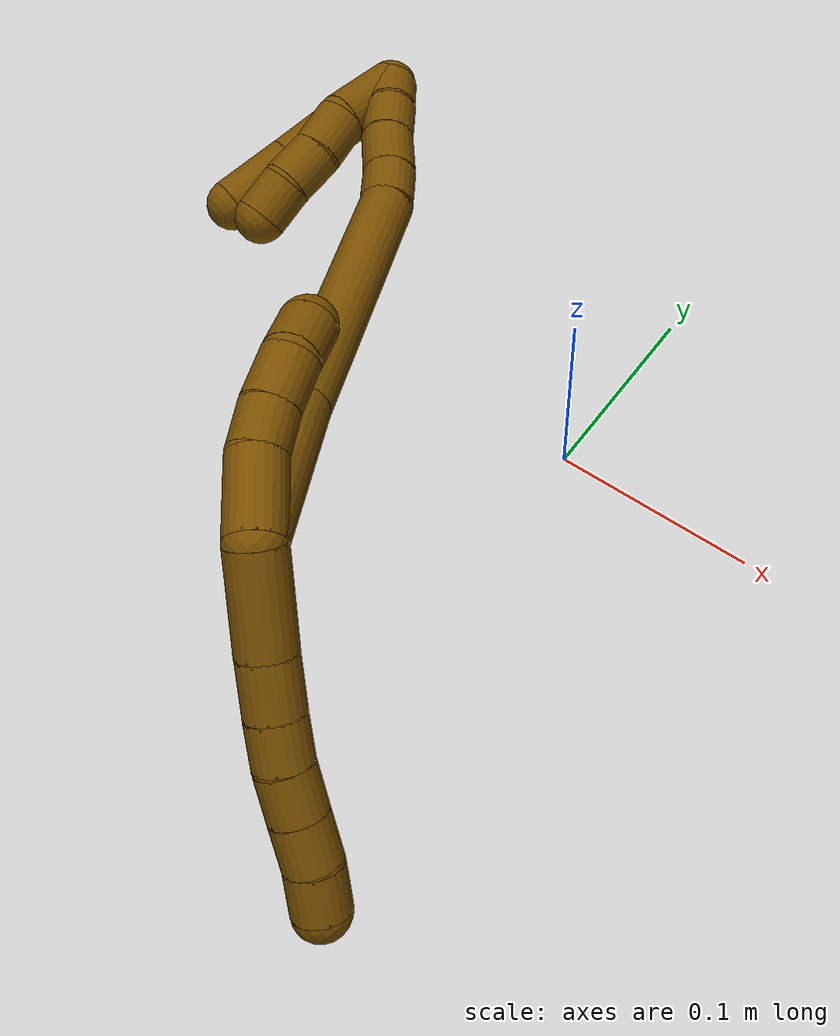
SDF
<sdf version="1.7">
 <world name="default">
  <model name="12">
   <static>0</static>
   <link name="12">
    <collision name="collision-cylinder-e_1_2_8">
     <pose>-0.000593 0.017955 -0.011881 -2.15534 -0.027544 0.051245</pose>
     <geometry><cylinder><radius>0.0125</radius><length>0.043076</length></cylinder></geometry>
     <surface>
      <friction><ode><mu>1.16</mu><mu2>1.16</mu2><slip1>0</slip1><slip2>0</slip2></ode></friction>
      <contact><ode><kp>1e+06</kp><kd>1</kd><max_vel>0</max_vel><min_depth>0.001</min_depth></ode></contact>
     </surface>
    </collision>
    <visual name="visual-cylinder-e_1_2_8">
     <pose>-0.000593 0.017955 -0.011881 -2.15534 -0.027544 0.051245</pose>
     <geometry><cylinder><radius>0.0125</radius><length>0.043076</length></cylinder></geometry>
     <material><ambient>0.466667 0.301961 0 1</ambient></material>
    </visual>
    <collision name="collision-cylinder-e_2_8_9">
     <pose>-0.001012 0.04598 -0.030113 -2.13353 0.014645 -0.026551</pose>
     <geometry><cylinder><radius>0.0125</radius><length>0.023812</length></cylinder></geometry>
     <surface>
      <friction><ode><mu>1.16</mu><mu2>1.16</mu2><slip1>0</slip1><slip2>0</slip2></ode></friction>
      <contact><ode><kp>1e+06</kp><kd>1</kd><max_vel>0</max_vel><min_depth>0.001</min_depth></ode></contact>
     </surface>
    </collision>
    <visual name="visual-cylinder-e_2_8_9">
     <pose>-0.001012 0.04598 -0.030113 -2.13353 0.014645 -0.026551</pose>
     <geometry><cylinder><radius>0.0125</radius><length>0.023812</length></cylinder></geometry>
     <material><ambient>0.466667 0.301961 0 1</ambient></material>
    </visual>
    <collision name="collision-cylinder-e_3_9_10">
     <pose>-0.000525 0.06468 -0.041557 -2.10391 0.031171 -0.054578</pose>
     <geometry><cylinder><radius>0.0125</radius><length>0.020055</length></cylinder></geometry>
     <surface>
      <friction><ode><mu>1.16</mu><mu2>1.16</mu2><slip1>0</slip1><slip2>0</slip2></ode></friction>
      <contact><ode><kp>1e+06</kp><kd>1</kd><max_vel>0</max_vel><min_depth>0.001</min_depth></ode></contact>
     </surface>
    </collision>
    <visual name="visual-cylinder-e_3_9_10">
     <pose>-0.000525 0.06468 -0.041557 -2.10391 0.031171 -0.054578</pose>
     <geometry><cylinder><radius>0.0125</radius><length>0.020055</length></cylinder></geometry>
     <material><ambient>0.466667 0.301961 0 1</ambient></material>
    </visual>
    <collision name="collision-cylinder-e_4_10_11">
     <pose>-5.4e-05 0.08285 -0.050929 -1.99244 0.015179 -0.023444</pose>
     <geometry><cylinder><radius>0.0125</radius><length>0.020909</length></cylinder></geometry>
     <surface>
      <friction><ode><mu>1.16</mu><mu2>1.16</mu2><slip1>0</slip1><slip2>0</slip2></ode></friction>
      <contact><ode><kp>1e+06</kp><kd>1</kd><max_vel>0</max_vel><min_depth>0.001</min_depth></ode></contact>
     </surface>
    </collision>
    <visual name="visual-cylinder-e_4_10_11">
     <pose>-5.4e-05 0.08285 -0.050929 -1.99244 0.015179 -0.023444</pose>
     <geometry><cylinder><radius>0.0125</radius><length>0.020909</length></cylinder></geometry>
     <material><ambient>0.466667 0.301961 0 1</ambient></material>
    </visual>
    <collision name="collision-cylinder-e_5_11_12">
     <pose>0.000192 0.102109 -0.059468 -1.98386 0.008207 -0.012558</pose>
     <geometry><cylinder><radius>0.0125</radius><length>0.021229</length></cylinder></geometry>
     <surface>
      <friction><ode><mu>1.16</mu><mu2>1.16</mu2><slip1>0</slip1><slip2>0</slip2></ode></friction>
      <contact><ode><kp>1e+06</kp><kd>1</kd><max_vel>0</max_vel><min_depth>0.001</min_depth></ode></contact>
     </surface>
    </collision>
    <visual name="visual-cylinder-e_5_11_12">
     <pose>0.000192 0.102109 -0.059468 -1.98386 0.008207 -0.012558</pose>
     <geometry><cylinder><radius>0.0125</radius><length>0.021229</length></cylinder></geometry>
     <material><ambient>0.466667 0.301961 0 1</ambient></material>
    </visual>
    <collision name="collision-cylinder-e_6_12_6">
     <pose>-0.00056 0.120937 -0.068804 -2.07919 -0.080344 0.136608</pose>
     <geometry><cylinder><radius>0.0125</radius><length>0.020919</length></cylinder></geometry>
     <surface>
      <friction><ode><mu>1.16</mu><mu2>1.16</mu2><slip1>0</slip1><slip2>0</slip2></ode></friction>
      <contact><ode><kp>1e+06</kp><kd>1</kd><max_vel>0</max_vel><min_depth>0.001</min_depth></ode></contact>
     </surface>
    </collision>
    <visual name="visual-cylinder-e_6_12_6">
     <pose>-0.00056 0.120937 -0.068804 -2.07919 -0.080344 0.136608</pose>
     <geometry><cylinder><radius>0.0125</radius><length>0.020919</length></cylinder></geometry>
     <material><ambient>0.466667 0.301961 0 1</ambient></material>
    </visual>
    <collision name="collision-cylinder-e_1_2_13">
     <pose>-0.010069 -0.009478 0.011098 0.706814 -0.603908 -0.228802</pose>
     <geometry><cylinder><radius>0.0125</radius><length>0.035461</length></cylinder></geometry>
     <surface>
      <friction><ode><mu>1.16</mu><mu2>1.16</mu2><slip1>0</slip1><slip2>0</slip2></ode></friction>
      <contact><ode><kp>1e+06</kp><kd>1</kd><max_vel>0</max_vel><min_depth>0.001</min_depth></ode></contact>
     </surface>
    </collision>
    <visual name="visual-cylinder-e_1_2_13">
     <pose>-0.010069 -0.009478 0.011098 0.706814 -0.603908 -0.228802</pose>
     <geometry><cylinder><radius>0.0125</radius><length>0.035461</length></cylinder></geometry>
     <material><ambient>0.466667 0.301961 0 1</ambient></material>
    </visual>
    <collision name="collision-cylinder-e_2_13_14">
     <pose>-0.025188 -0.022914 0.030042 0.467211 -0.521636 -0.126846</pose>
     <geometry><cylinder><radius>0.0125</radius><length>0.020271</length></cylinder></geometry>
     <surface>
      <friction><ode><mu>1.16</mu><mu2>1.16</mu2><slip1>0</slip1><slip2>0</slip2></ode></friction>
      <contact><ode><kp>1e+06</kp><kd>1</kd><max_vel>0</max_vel><min_depth>0.001</min_depth></ode></contact>
     </surface>
    </collision>
    <visual name="visual-cylinder-e_2_13_14">
     <pose>-0.025188 -0.022914 0.030042 0.467211 -0.521636 -0.126846</pose>
     <geometry><cylinder><radius>0.0125</radius><length>0.020271</length></cylinder></geometry>
     <material><ambient>0.466667 0.301961 0 1</ambient></material>
    </visual>
    <collision name="collision-cylinder-e_3_14_15">
     <pose>-0.035468 -0.03033 0.047703 0.338772 -0.465688 -0.081071</pose>
     <geometry><cylinder><radius>0.0125</radius><length>0.023294</length></cylinder></geometry>
     <surface>
      <friction><ode><mu>1.16</mu><mu2>1.16</mu2><slip1>0</slip1><slip2>0</slip2></ode></friction>
      <contact><ode><kp>1e+06</kp><kd>1</kd><max_vel>0</max_vel><min_depth>0.001</min_depth></ode></contact>
     </surface>
    </collision>
    <visual name="visual-cylinder-e_3_14_15">
     <pose>-0.035468 -0.03033 0.047703 0.338772 -0.465688 -0.081071</pose>
     <geometry><cylinder><radius>0.0125</radius><length>0.023294</length></cylinder></geometry>
     <material><ambient>0.466667 0.301961 0 1</ambient></material>
    </visual>
    <collision name="collision-cylinder-e_4_15_5">
     <pose>-0.047875 -0.03485 0.06509 0.139229 -0.7538 -0.055185</pose>
     <geometry><cylinder><radius>0.0125</radius><length>0.020974</length></cylinder></geometry>
     <surface>
      <friction><ode><mu>1.16</mu><mu2>1.16</mu2><slip1>0</slip1><slip2>0</slip2></ode></friction>
      <contact><ode><kp>1e+06</kp><kd>1</kd><max_vel>0</max_vel><min_depth>0.001</min_depth></ode></contact>
     </surface>
    </collision>
    <visual name="visual-cylinder-e_4_15_5">
     <pose>-0.047875 -0.03485 0.06509 0.139229 -0.7538 -0.055185</pose>
     <geometry><cylinder><radius>0.0125</radius><length>0.020974</length></cylinder></geometry>
     <material><ambient>0.466667 0.301961 0 1</ambient></material>
    </visual>
    <collision name="collision-cylinder-e_1_2_16">
     <pose>-0.034683 -0.004339 0.02567 0.167436 -0.926883 -0.083822</pose>
     <geometry><cylinder><radius>0.0125</radius><length>0.086734</length></cylinder></geometry>
     <surface>
      <friction><ode><mu>1.16</mu><mu2>1.16</mu2><slip1>0</slip1><slip2>0</slip2></ode></friction>
      <contact><ode><kp>1e+06</kp><kd>1</kd><max_vel>0</max_vel><min_depth>0.001</min_depth></ode></contact>
     </surface>
    </collision>
    <visual name="visual-cylinder-e_1_2_16">
     <pose>-0.034683 -0.004339 0.02567 0.167436 -0.926883 -0.083822</pose>
     <geometry><cylinder><radius>0.0125</radius><length>0.086734</length></cylinder></geometry>
     <material><ambient>0.466667 0.301961 0 1</ambient></material>
    </visual>
    <collision name="collision-cylinder-e_2_16_17">
     <pose>-0.108702 -0.02136 0.10032 0.253376 -0.66085 -0.08732</pose>
     <geometry><cylinder><radius>0.0125</radius><length>0.128175</length></cylinder></geometry>
     <surface>
      <friction><ode><mu>1.16</mu><mu2>1.16</mu2><slip1>0</slip1><slip2>0</slip2></ode></friction>
      <contact><ode><kp>1e+06</kp><kd>1</kd><max_vel>0</max_vel><min_depth>0.001</min_depth></ode></contact>
     </surface>
    </collision>
    <visual name="visual-cylinder-e_2_16_17">
     <pose>-0.108702 -0.02136 0.10032 0.253376 -0.66085 -0.08732</pose>
     <geometry><cylinder><radius>0.0125</radius><length>0.128175</length></cylinder></geometry>
     <material><ambient>0.466667 0.301961 0 1</ambient></material>
    </visual>
    <collision name="collision-cylinder-e_3_17_18">
     <pose>-0.154947 -0.037884 0.156115 0.513211 -0.72352 -0.197935</pose>
     <geometry><cylinder><radius>0.0125</radius><length>0.020874</length></cylinder></geometry>
     <surface>
      <friction><ode><mu>1.16</mu><mu2>1.16</mu2><slip1>0</slip1><slip2>0</slip2></ode></friction>
      <contact><ode><kp>1e+06</kp><kd>1</kd><max_vel>0</max_vel><min_depth>0.001</min_depth></ode></contact>
     </surface>
    </collision>
    <visual name="visual-cylinder-e_3_17_18">
     <pose>-0.154947 -0.037884 0.156115 0.513211 -0.72352 -0.197935</pose>
     <geometry><cylinder><radius>0.0125</radius><length>0.020874</length></cylinder></geometry>
     <material><ambient>0.466667 0.301961 0 1</ambient></material>
    </visual>
    <collision name="collision-cylinder-e_4_18_19">
     <pose>-0.169529 -0.047306 0.169742 0.686335 -0.716647 -0.266034</pose>
     <geometry><cylinder><radius>0.0125</radius><length>0.023361</length></cylinder></geometry>
     <surface>
      <friction><ode><mu>1.16</mu><mu2>1.16</mu2><slip1>0</slip1><slip2>0</slip2></ode></friction>
      <contact><ode><kp>1e+06</kp><kd>1</kd><max_vel>0</max_vel><min_depth>0.001</min_depth></ode></contact>
     </surface>
    </collision>
    <visual name="visual-cylinder-e_4_18_19">
     <pose>-0.169529 -0.047306 0.169742 0.686335 -0.716647 -0.266034</pose>
     <geometry><cylinder><radius>0.0125</radius><length>0.023361</length></cylinder></geometry>
     <material><ambient>0.466667 0.301961 0 1</ambient></material>
    </visual>
    <collision name="collision-cylinder-e_5_19_20">
     <pose>-0.183709 -0.05682 0.183258 0.53067 -0.697067 -0.196846</pose>
     <geometry><cylinder><radius>0.0125</radius><length>0.020271</length></cylinder></geometry>
     <surface>
      <friction><ode><mu>1.16</mu><mu2>1.16</mu2><slip1>0</slip1><slip2>0</slip2></ode></friction>
      <contact><ode><kp>1e+06</kp><kd>1</kd><max_vel>0</max_vel><min_depth>0.001</min_depth></ode></contact>
     </surface>
    </collision>
    <visual name="visual-cylinder-e_5_19_20">
     <pose>-0.183709 -0.05682 0.183258 0.53067 -0.697067 -0.196846</pose>
     <geometry><cylinder><radius>0.0125</radius><length>0.020271</length></cylinder></geometry>
     <material><ambient>0.466667 0.301961 0 1</ambient></material>
    </visual>
    <collision name="collision-cylinder-e_6_20_1">
     <pose>-0.197944 -0.063982 0.195942 0.495056 -0.849413 -0.227579</pose>
     <geometry><cylinder><radius>0.0125</radius><length>0.020585</length></cylinder></geometry>
     <surface>
      <friction><ode><mu>1.16</mu><mu2>1.16</mu2><slip1>0</slip1><slip2>0</slip2></ode></friction>
      <contact><ode><kp>1e+06</kp><kd>1</kd><max_vel>0</max_vel><min_depth>0.001</min_depth></ode></contact>
     </surface>
    </collision>
    <visual name="visual-cylinder-e_6_20_1">
     <pose>-0.197944 -0.063982 0.195942 0.495056 -0.849413 -0.227579</pose>
     <geometry><cylinder><radius>0.0125</radius><length>0.020585</length></cylinder></geometry>
     <material><ambient>0.466667 0.301961 0 1</ambient></material>
    </visual>
    <collision name="collision-cylinder-e_1_1_21">
     <pose>-0.205497 -0.067949 0.185371 3.09707 0.010618 0.468148</pose>
     <geometry><cylinder><radius>0.0125</radius><length>0.033139</length></cylinder></geometry>
     <surface>
      <friction><ode><mu>1.16</mu><mu2>1.16</mu2><slip1>0</slip1><slip2>0</slip2></ode></friction>
      <contact><ode><kp>1e+06</kp><kd>1</kd><max_vel>0</max_vel><min_depth>0.001</min_depth></ode></contact>
     </surface>
    </collision>
    <visual name="visual-cylinder-e_1_1_21">
     <pose>-0.205497 -0.067949 0.185371 3.09707 0.010618 0.468148</pose>
     <geometry><cylinder><radius>0.0125</radius><length>0.033139</length></cylinder></geometry>
     <material><ambient>0.466667 0.301961 0 1</ambient></material>
    </visual>
    <collision name="collision-cylinder-e_2_21_22">
     <pose>-0.205311 -0.069319 0.153106 3.10135 0.000585 0.029056</pose>
     <geometry><cylinder><radius>0.0125</radius><length>0.031452</length></cylinder></geometry>
     <surface>
      <friction><ode><mu>1.16</mu><mu2>1.16</mu2><slip1>0</slip1><slip2>0</slip2></ode></friction>
      <contact><ode><kp>1e+06</kp><kd>1</kd><max_vel>0</max_vel><min_depth>0.001</min_depth></ode></contact>
     </surface>
    </collision>
    <visual name="visual-cylinder-e_2_21_22">
     <pose>-0.205311 -0.069319 0.153106 3.10135 0.000585 0.029056</pose>
     <geometry><cylinder><radius>0.0125</radius><length>0.031452</length></cylinder></geometry>
     <material><ambient>0.466667 0.301961 0 1</ambient></material>
    </visual>
    <collision name="collision-cylinder-e_3_22_4">
     <pose>-0.205414 -0.070833 0.11971 3.09181 -0.006289 -0.251275</pose>
     <geometry><cylinder><radius>0.0125</radius><length>0.035409</length></cylinder></geometry>
     <surface>
      <friction><ode><mu>1.16</mu><mu2>1.16</mu2><slip1>0</slip1><slip2>0</slip2></ode></friction>
      <contact><ode><kp>1e+06</kp><kd>1</kd><max_vel>0</max_vel><min_depth>0.001</min_depth></ode></contact>
     </surface>
    </collision>
    <visual name="visual-cylinder-e_3_22_4">
     <pose>-0.205414 -0.070833 0.11971 3.09181 -0.006289 -0.251275</pose>
     <geometry><cylinder><radius>0.0125</radius><length>0.035409</length></cylinder></geometry>
     <material><ambient>0.466667 0.301961 0 1</ambient></material>
    </visual>
    <collision name="collision-cylinder-e_1_1_23">
     <pose>-0.199949 -0.069405 0.185171 3.0114 0.326634 2.38821</pose>
     <geometry><cylinder><radius>0.0125</radius><length>0.035677</length></cylinder></geometry>
     <surface>
      <friction><ode><mu>1.16</mu><mu2>1.16</mu2><slip1>0</slip1><slip2>0</slip2></ode></friction>
      <contact><ode><kp>1e+06</kp><kd>1</kd><max_vel>0</max_vel><min_depth>0.001</min_depth></ode></contact>
     </surface>
    </collision>
    <visual name="visual-cylinder-e_1_1_23">
     <pose>-0.199949 -0.069405 0.185171 3.0114 0.326634 2.38821</pose>
     <geometry><cylinder><radius>0.0125</radius><length>0.035677</length></cylinder></geometry>
     <material><ambient>0.466667 0.301961 0 1</ambient></material>
    </visual>
    <collision name="collision-cylinder-e_2_23_24">
     <pose>-0.191688 -0.069412 0.157821 -2.93814 0.23033 -1.69552</pose>
     <geometry><cylinder><radius>0.0125</radius><length>0.022228</length></cylinder></geometry>
     <surface>
      <friction><ode><mu>1.16</mu><mu2>1.16</mu2><slip1>0</slip1><slip2>0</slip2></ode></friction>
      <contact><ode><kp>1e+06</kp><kd>1</kd><max_vel>0</max_vel><min_depth>0.001</min_depth></ode></contact>
     </surface>
    </collision>
    <visual name="visual-cylinder-e_2_23_24">
     <pose>-0.191688 -0.069412 0.157821 -2.93814 0.23033 -1.69552</pose>
     <geometry><cylinder><radius>0.0125</radius><length>0.022228</length></cylinder></geometry>
     <material><ambient>0.466667 0.301961 0 1</ambient></material>
    </visual>
    <collision name="collision-cylinder-e_3_24_25">
     <pose>-0.187726 -0.066296 0.136501 -3.05511 0.131595 -1.97953</pose>
     <geometry><cylinder><radius>0.0125</radius><length>0.021713</length></cylinder></geometry>
     <surface>
      <friction><ode><mu>1.16</mu><mu2>1.16</mu2><slip1>0</slip1><slip2>0</slip2></ode></friction>
      <contact><ode><kp>1e+06</kp><kd>1</kd><max_vel>0</max_vel><min_depth>0.001</min_depth></ode></contact>
     </surface>
    </collision>
    <visual name="visual-cylinder-e_3_24_25">
     <pose>-0.187726 -0.066296 0.136501 -3.05511 0.131595 -1.97953</pose>
     <geometry><cylinder><radius>0.0125</radius><length>0.021713</length></cylinder></geometry>
     <material><ambient>0.466667 0.301961 0 1</ambient></material>
    </visual>
    <collision name="collision-cylinder-e_4_25_3">
     <pose>-0.18658 -0.063109 0.115845 -2.91809 -0.027331 0.242372</pose>
     <geometry><cylinder><radius>0.0125</radius><length>0.020382</length></cylinder></geometry>
     <surface>
      <friction><ode><mu>1.16</mu><mu2>1.16</mu2><slip1>0</slip1><slip2>0</slip2></ode></friction>
      <contact><ode><kp>1e+06</kp><kd>1</kd><max_vel>0</max_vel><min_depth>0.001</min_depth></ode></contact>
     </surface>
    </collision>
    <visual name="visual-cylinder-e_4_25_3">
     <pose>-0.18658 -0.063109 0.115845 -2.91809 -0.027331 0.242372</pose>
     <geometry><cylinder><radius>0.0125</radius><length>0.020382</length></cylinder></geometry>
     <material><ambient>0.466667 0.301961 0 1</ambient></material>
    </visual>
    <collision name="collision-sphere-3">
     <pose>-0.186859 -0.060851 0.105911 0 -0 0</pose>
     <geometry><sphere><radius>0.0125</radius></sphere></geometry>
     <surface>
      <friction><ode><mu>1.16</mu><mu2>1.16</mu2><slip1>0</slip1><slip2>0</slip2></ode></friction>
      <contact><ode><kp>1e+06</kp><kd>1</kd><max_vel>0</max_vel><min_depth>0.001</min_depth></ode></contact>
     </surface>
    </collision>
    <visual name="visual-sphere-3">
     <pose>-0.186859 -0.060851 0.105911 0 -0 0</pose>
     <geometry><sphere><radius>0.0125</radius></sphere></geometry>
     <material><ambient>0.466667 0.301961 0 1</ambient></material>
    </visual>
    <collision name="collision-sphere-25">
     <pose>-0.186302 -0.065367 0.125779 0 -0 0</pose>
     <geometry><sphere><radius>0.0125</radius></sphere></geometry>
     <surface>
      <friction><ode><mu>1.16</mu><mu2>1.16</mu2><slip1>0</slip1><slip2>0</slip2></ode></friction>
      <contact><ode><kp>1e+06</kp><kd>1</kd><max_vel>0</max_vel><min_depth>0.001</min_depth></ode></contact>
     </surface>
    </collision>
    <visual name="visual-sphere-25">
     <pose>-0.186302 -0.065367 0.125779 0 -0 0</pose>
     <geometry><sphere><radius>0.0125</radius></sphere></geometry>
     <material><ambient>0.466667 0.301961 0 1</ambient></material>
    </visual>
    <collision name="collision-sphere-24">
     <pose>-0.189151 -0.067226 0.147224 0 -0 0</pose>
     <geometry><sphere><radius>0.0125</radius></sphere></geometry>
     <surface>
      <friction><ode><mu>1.16</mu><mu2>1.16</mu2><slip1>0</slip1><slip2>0</slip2></ode></friction>
      <contact><ode><kp>1e+06</kp><kd>1</kd><max_vel>0</max_vel><min_depth>0.001</min_depth></ode></contact>
     </surface>
    </collision>
    <visual name="visual-sphere-24">
     <pose>-0.189151 -0.067226 0.147224 0 -0 0</pose>
     <geometry><sphere><radius>0.0125</radius></sphere></geometry>
     <material><ambient>0.466667 0.301961 0 1</ambient></material>
    </visual>
    <collision name="collision-sphere-23">
     <pose>-0.194225 -0.071598 0.168419 0 -0 0</pose>
     <geometry><sphere><radius>0.0125</radius></sphere></geometry>
     <surface>
      <friction><ode><mu>1.16</mu><mu2>1.16</mu2><slip1>0</slip1><slip2>0</slip2></ode></friction>
      <contact><ode><kp>1e+06</kp><kd>1</kd><max_vel>0</max_vel><min_depth>0.001</min_depth></ode></contact>
     </surface>
    </collision>
    <visual name="visual-sphere-23">
     <pose>-0.194225 -0.071598 0.168419 0 -0 0</pose>
     <geometry><sphere><radius>0.0125</radius></sphere></geometry>
     <material><ambient>0.466667 0.301961 0 1</ambient></material>
    </visual>
    <collision name="collision-sphere-4">
     <pose>-0.205525 -0.071714 0.102028 0 -0 0</pose>
     <geometry><sphere><radius>0.0125</radius></sphere></geometry>
     <surface>
      <friction><ode><mu>1.16</mu><mu2>1.16</mu2><slip1>0</slip1><slip2>0</slip2></ode></friction>
      <contact><ode><kp>1e+06</kp><kd>1</kd><max_vel>0</max_vel><min_depth>0.001</min_depth></ode></contact>
     </surface>
    </collision>
    <visual name="visual-sphere-4">
     <pose>-0.205525 -0.071714 0.102028 0 -0 0</pose>
     <geometry><sphere><radius>0.0125</radius></sphere></geometry>
     <material><ambient>0.466667 0.301961 0 1</ambient></material>
    </visual>
    <collision name="collision-sphere-22">
     <pose>-0.205302 -0.069952 0.137393 0 -0 0</pose>
     <geometry><sphere><radius>0.0125</radius></sphere></geometry>
     <surface>
      <friction><ode><mu>1.16</mu><mu2>1.16</mu2><slip1>0</slip1><slip2>0</slip2></ode></friction>
      <contact><ode><kp>1e+06</kp><kd>1</kd><max_vel>0</max_vel><min_depth>0.001</min_depth></ode></contact>
     </surface>
    </collision>
    <visual name="visual-sphere-22">
     <pose>-0.205302 -0.069952 0.137393 0 -0 0</pose>
     <geometry><sphere><radius>0.0125</radius></sphere></geometry>
     <material><ambient>0.466667 0.301961 0 1</ambient></material>
    </visual>
    <collision name="collision-sphere-21">
     <pose>-0.205321 -0.068687 0.168819 0 -0 0</pose>
     <geometry><sphere><radius>0.0125</radius></sphere></geometry>
     <surface>
      <friction><ode><mu>1.16</mu><mu2>1.16</mu2><slip1>0</slip1><slip2>0</slip2></ode></friction>
      <contact><ode><kp>1e+06</kp><kd>1</kd><max_vel>0</max_vel><min_depth>0.001</min_depth></ode></contact>
     </surface>
    </collision>
    <visual name="visual-sphere-21">
     <pose>-0.205321 -0.068687 0.168819 0 -0 0</pose>
     <geometry><sphere><radius>0.0125</radius></sphere></geometry>
     <material><ambient>0.466667 0.301961 0 1</ambient></material>
    </visual>
    <collision name="collision-sphere-1">
     <pose>-0.205673 -0.067212 0.201923 0 -0 0</pose>
     <geometry><sphere><radius>0.0125</radius></sphere></geometry>
     <surface>
      <friction><ode><mu>1.16</mu><mu2>1.16</mu2><slip1>0</slip1><slip2>0</slip2></ode></friction>
      <contact><ode><kp>1e+06</kp><kd>1</kd><max_vel>0</max_vel><min_depth>0.001</min_depth></ode></contact>
     </surface>
    </collision>
    <visual name="visual-sphere-1">
     <pose>-0.205673 -0.067212 0.201923 0 -0 0</pose>
     <geometry><sphere><radius>0.0125</radius></sphere></geometry>
     <material><ambient>0.466667 0.301961 0 1</ambient></material>
    </visual>
    <collision name="collision-sphere-12">
     <pose>0.000279 0.11183 -0.063729 0 -0 0</pose>
     <geometry><sphere><radius>0.0125</radius></sphere></geometry>
     <surface>
      <friction><ode><mu>1.16</mu><mu2>1.16</mu2><slip1>0</slip1><slip2>0</slip2></ode></friction>
      <contact><ode><kp>1e+06</kp><kd>1</kd><max_vel>0</max_vel><min_depth>0.001</min_depth></ode></contact>
     </surface>
    </collision>
    <visual name="visual-sphere-12">
     <pose>0.000279 0.11183 -0.063729 0 -0 0</pose>
     <geometry><sphere><radius>0.0125</radius></sphere></geometry>
     <material><ambient>0.466667 0.301961 0 1</ambient></material>
    </visual>
    <collision name="collision-sphere-11">
     <pose>0.000105 0.092388 -0.055208 0 -0 0</pose>
     <geometry><sphere><radius>0.0125</radius></sphere></geometry>
     <surface>
      <friction><ode><mu>1.16</mu><mu2>1.16</mu2><slip1>0</slip1><slip2>0</slip2></ode></friction>
      <contact><ode><kp>1e+06</kp><kd>1</kd><max_vel>0</max_vel><min_depth>0.001</min_depth></ode></contact>
     </surface>
    </collision>
    <visual name="visual-sphere-11">
     <pose>0.000105 0.092388 -0.055208 0 -0 0</pose>
     <geometry><sphere><radius>0.0125</radius></sphere></geometry>
     <material><ambient>0.466667 0.301961 0 1</ambient></material>
    </visual>
    <collision name="collision-sphere-10">
     <pose>-0.000213 0.073312 -0.046651 0 -0 0</pose>
     <geometry><sphere><radius>0.0125</radius></sphere></geometry>
     <surface>
      <friction><ode><mu>1.16</mu><mu2>1.16</mu2><slip1>0</slip1><slip2>0</slip2></ode></friction>
      <contact><ode><kp>1e+06</kp><kd>1</kd><max_vel>0</max_vel><min_depth>0.001</min_depth></ode></contact>
     </surface>
    </collision>
    <visual name="visual-sphere-10">
     <pose>-0.000213 0.073312 -0.046651 0 -0 0</pose>
     <geometry><sphere><radius>0.0125</radius></sphere></geometry>
     <material><ambient>0.466667 0.301961 0 1</ambient></material>
    </visual>
    <collision name="collision-sphere-9">
     <pose>-0.000838 0.056048 -0.036464 0 -0 0</pose>
     <geometry><sphere><radius>0.0125</radius></sphere></geometry>
     <surface>
      <friction><ode><mu>1.16</mu><mu2>1.16</mu2><slip1>0</slip1><slip2>0</slip2></ode></friction>
      <contact><ode><kp>1e+06</kp><kd>1</kd><max_vel>0</max_vel><min_depth>0.001</min_depth></ode></contact>
     </surface>
    </collision>
    <visual name="visual-sphere-9">
     <pose>-0.000838 0.056048 -0.036464 0 -0 0</pose>
     <geometry><sphere><radius>0.0125</radius></sphere></geometry>
     <material><ambient>0.466667 0.301961 0 1</ambient></material>
    </visual>
    <collision name="collision-sphere-2">
     <geometry><sphere><radius>0.0125</radius></sphere></geometry>
     <surface>
      <friction><ode><mu>1.16</mu><mu2>1.16</mu2><slip1>0</slip1><slip2>0</slip2></ode></friction>
      <contact><ode><kp>1e+06</kp><kd>1</kd><max_vel>0</max_vel><min_depth>0.001</min_depth></ode></contact>
     </surface>
    </collision>
    <visual name="visual-sphere-2">
     <geometry><sphere><radius>0.0125</radius></sphere></geometry>
     <material><ambient>0.466667 0.301961 0 1</ambient></material>
    </visual>
    <collision name="collision-sphere-19">
     <pose>-0.177202 -0.052887 0.176555 0 -0 0</pose>
     <geometry><sphere><radius>0.0125</radius></sphere></geometry>
     <surface>
      <friction><ode><mu>1.16</mu><mu2>1.16</mu2><slip1>0</slip1><slip2>0</slip2></ode></friction>
      <contact><ode><kp>1e+06</kp><kd>1</kd><max_vel>0</max_vel><min_depth>0.001</min_depth></ode></contact>
     </surface>
    </collision>
    <visual name="visual-sphere-19">
     <pose>-0.177202 -0.052887 0.176555 0 -0 0</pose>
     <geometry><sphere><radius>0.0125</radius></sphere></geometry>
     <material><ambient>0.466667 0.301961 0 1</ambient></material>
    </visual>
    <collision name="collision-sphere-8">
     <pose>-0.001186 0.035911 -0.023761 0 -0 0</pose>
     <geometry><sphere><radius>0.0125</radius></sphere></geometry>
     <surface>
      <friction><ode><mu>1.16</mu><mu2>1.16</mu2><slip1>0</slip1><slip2>0</slip2></ode></friction>
      <contact><ode><kp>1e+06</kp><kd>1</kd><max_vel>0</max_vel><min_depth>0.001</min_depth></ode></contact>
     </surface>
    </collision>
    <visual name="visual-sphere-8">
     <pose>-0.001186 0.035911 -0.023761 0 -0 0</pose>
     <geometry><sphere><radius>0.0125</radius></sphere></geometry>
     <material><ambient>0.466667 0.301961 0 1</ambient></material>
    </visual>
    <collision name="collision-sphere-6">
     <pose>-0.0014 0.130045 -0.073879 0 -0 0</pose>
     <geometry><sphere><radius>0.0125</radius></sphere></geometry>
     <surface>
      <friction><ode><mu>1.16</mu><mu2>1.16</mu2><slip1>0</slip1><slip2>0</slip2></ode></friction>
      <contact><ode><kp>1e+06</kp><kd>1</kd><max_vel>0</max_vel><min_depth>0.001</min_depth></ode></contact>
     </surface>
    </collision>
    <visual name="visual-sphere-6">
     <pose>-0.0014 0.130045 -0.073879 0 -0 0</pose>
     <geometry><sphere><radius>0.0125</radius></sphere></geometry>
     <material><ambient>0.466667 0.301961 0 1</ambient></material>
    </visual>
    <collision name="collision-sphere-13">
     <pose>-0.020137 -0.018956 0.022196 0 -0 0</pose>
     <geometry><sphere><radius>0.0125</radius></sphere></geometry>
     <surface>
      <friction><ode><mu>1.16</mu><mu2>1.16</mu2><slip1>0</slip1><slip2>0</slip2></ode></friction>
      <contact><ode><kp>1e+06</kp><kd>1</kd><max_vel>0</max_vel><min_depth>0.001</min_depth></ode></contact>
     </surface>
    </collision>
    <visual name="visual-sphere-13">
     <pose>-0.020137 -0.018956 0.022196 0 -0 0</pose>
     <geometry><sphere><radius>0.0125</radius></sphere></geometry>
     <material><ambient>0.466667 0.301961 0 1</ambient></material>
    </visual>
    <collision name="collision-sphere-14">
     <pose>-0.030238 -0.026872 0.037888 0 -0 0</pose>
     <geometry><sphere><radius>0.0125</radius></sphere></geometry>
     <surface>
      <friction><ode><mu>1.16</mu><mu2>1.16</mu2><slip1>0</slip1><slip2>0</slip2></ode></friction>
      <contact><ode><kp>1e+06</kp><kd>1</kd><max_vel>0</max_vel><min_depth>0.001</min_depth></ode></contact>
     </surface>
    </collision>
    <visual name="visual-sphere-14">
     <pose>-0.030238 -0.026872 0.037888 0 -0 0</pose>
     <geometry><sphere><radius>0.0125</radius></sphere></geometry>
     <material><ambient>0.466667 0.301961 0 1</ambient></material>
    </visual>
    <collision name="collision-sphere-15">
     <pose>-0.040698 -0.033788 0.057518 0 -0 0</pose>
     <geometry><sphere><radius>0.0125</radius></sphere></geometry>
     <surface>
      <friction><ode><mu>1.16</mu><mu2>1.16</mu2><slip1>0</slip1><slip2>0</slip2></ode></friction>
      <contact><ode><kp>1e+06</kp><kd>1</kd><max_vel>0</max_vel><min_depth>0.001</min_depth></ode></contact>
     </surface>
    </collision>
    <visual name="visual-sphere-15">
     <pose>-0.040698 -0.033788 0.057518 0 -0 0</pose>
     <geometry><sphere><radius>0.0125</radius></sphere></geometry>
     <material><ambient>0.466667 0.301961 0 1</ambient></material>
    </visual>
    <collision name="collision-sphere-5">
     <pose>-0.055053 -0.035911 0.072662 0 -0 0</pose>
     <geometry><sphere><radius>0.0125</radius></sphere></geometry>
     <surface>
      <friction><ode><mu>1.16</mu><mu2>1.16</mu2><slip1>0</slip1><slip2>0</slip2></ode></friction>
      <contact><ode><kp>1e+06</kp><kd>1</kd><max_vel>0</max_vel><min_depth>0.001</min_depth></ode></contact>
     </surface>
    </collision>
    <visual name="visual-sphere-5">
     <pose>-0.055053 -0.035911 0.072662 0 -0 0</pose>
     <geometry><sphere><radius>0.0125</radius></sphere></geometry>
     <material><ambient>0.466667 0.301961 0 1</ambient></material>
    </visual>
    <collision name="collision-sphere-16">
     <pose>-0.069365 -0.008678 0.051341 0 -0 0</pose>
     <geometry><sphere><radius>0.0125</radius></sphere></geometry>
     <surface>
      <friction><ode><mu>1.16</mu><mu2>1.16</mu2><slip1>0</slip1><slip2>0</slip2></ode></friction>
      <contact><ode><kp>1e+06</kp><kd>1</kd><max_vel>0</max_vel><min_depth>0.001</min_depth></ode></contact>
     </surface>
    </collision>
    <visual name="visual-sphere-16">
     <pose>-0.069365 -0.008678 0.051341 0 -0 0</pose>
     <geometry><sphere><radius>0.0125</radius></sphere></geometry>
     <material><ambient>0.466667 0.301961 0 1</ambient></material>
    </visual>
    <collision name="collision-sphere-17">
     <pose>-0.148038 -0.034043 0.1493 0 -0 0</pose>
     <geometry><sphere><radius>0.0125</radius></sphere></geometry>
     <surface>
      <friction><ode><mu>1.16</mu><mu2>1.16</mu2><slip1>0</slip1><slip2>0</slip2></ode></friction>
      <contact><ode><kp>1e+06</kp><kd>1</kd><max_vel>0</max_vel><min_depth>0.001</min_depth></ode></contact>
     </surface>
    </collision>
    <visual name="visual-sphere-17">
     <pose>-0.148038 -0.034043 0.1493 0 -0 0</pose>
     <geometry><sphere><radius>0.0125</radius></sphere></geometry>
     <material><ambient>0.466667 0.301961 0 1</ambient></material>
    </visual>
    <collision name="collision-sphere-18">
     <pose>-0.161857 -0.041725 0.16293 0 -0 0</pose>
     <geometry><sphere><radius>0.0125</radius></sphere></geometry>
     <surface>
      <friction><ode><mu>1.16</mu><mu2>1.16</mu2><slip1>0</slip1><slip2>0</slip2></ode></friction>
      <contact><ode><kp>1e+06</kp><kd>1</kd><max_vel>0</max_vel><min_depth>0.001</min_depth></ode></contact>
     </surface>
    </collision>
    <visual name="visual-sphere-18">
     <pose>-0.161857 -0.041725 0.16293 0 -0 0</pose>
     <geometry><sphere><radius>0.0125</radius></sphere></geometry>
     <material><ambient>0.466667 0.301961 0 1</ambient></material>
    </visual>
    <collision name="collision-sphere-20">
     <pose>-0.190215 -0.060753 0.18996 0 -0 0</pose>
     <geometry><sphere><radius>0.0125</radius></sphere></geometry>
     <surface>
      <friction><ode><mu>1.16</mu><mu2>1.16</mu2><slip1>0</slip1><slip2>0</slip2></ode></friction>
      <contact><ode><kp>1e+06</kp><kd>1</kd><max_vel>0</max_vel><min_depth>0.001</min_depth></ode></contact>
     </surface>
    </collision>
    <visual name="visual-sphere-20">
     <pose>-0.190215 -0.060753 0.18996 0 -0 0</pose>
     <geometry><sphere><radius>0.0125</radius></sphere></geometry>
     <material><ambient>0.466667 0.301961 0 1</ambient></material>
    </visual>
    <inertial>
     <pose>-0.099354 -0.018409 0.077792 0 -0 0</pose>
     <mass>0.75</mass>
     <inertia><ixx>0.000181</ixx><ixy>0</ixy><ixz>0</ixz><iyy>0.000217</iyy><iyz>0</iyz><izz>0.0002</izz></inertia>
    </inertial>
   </link>
   <pose>-0.026816 -0.173631 0.132106 -1.24931 -0.729198 -0.459567</pose>
  </model>
 </world>
</sdf>
